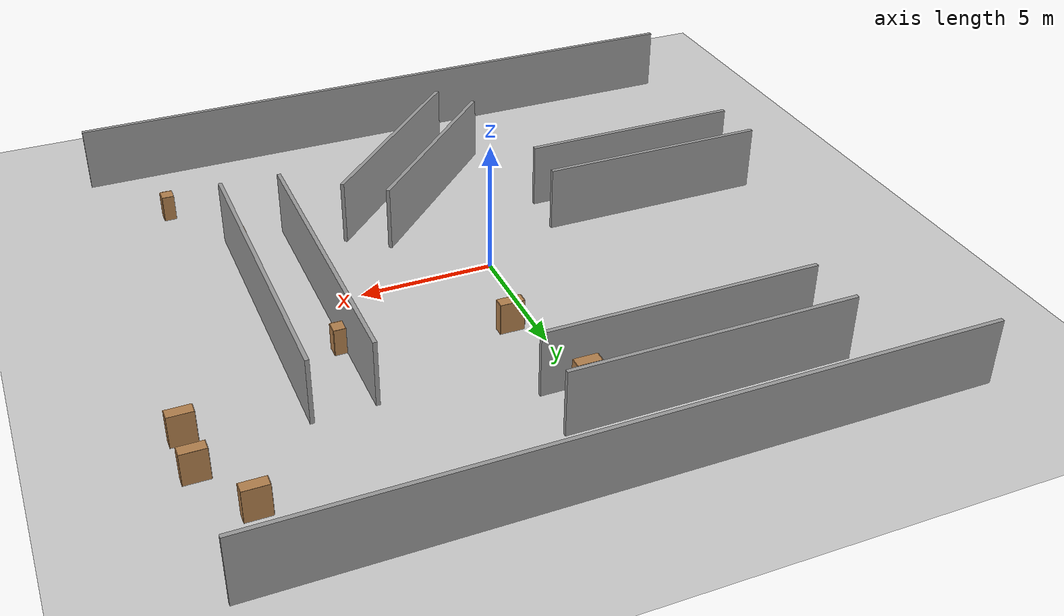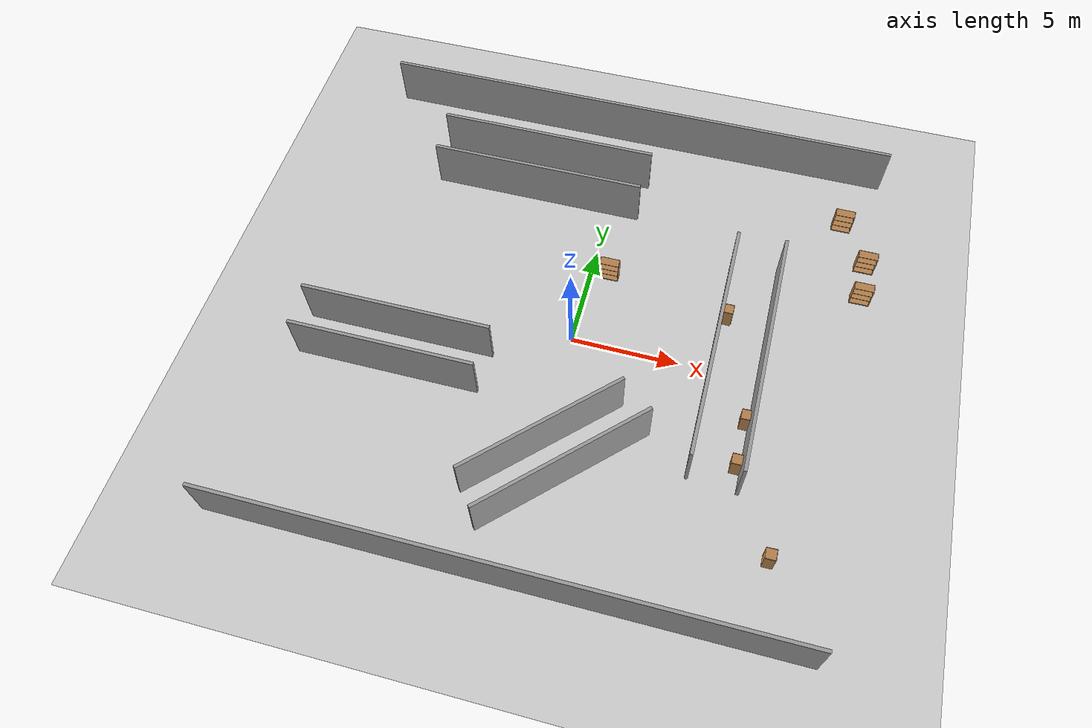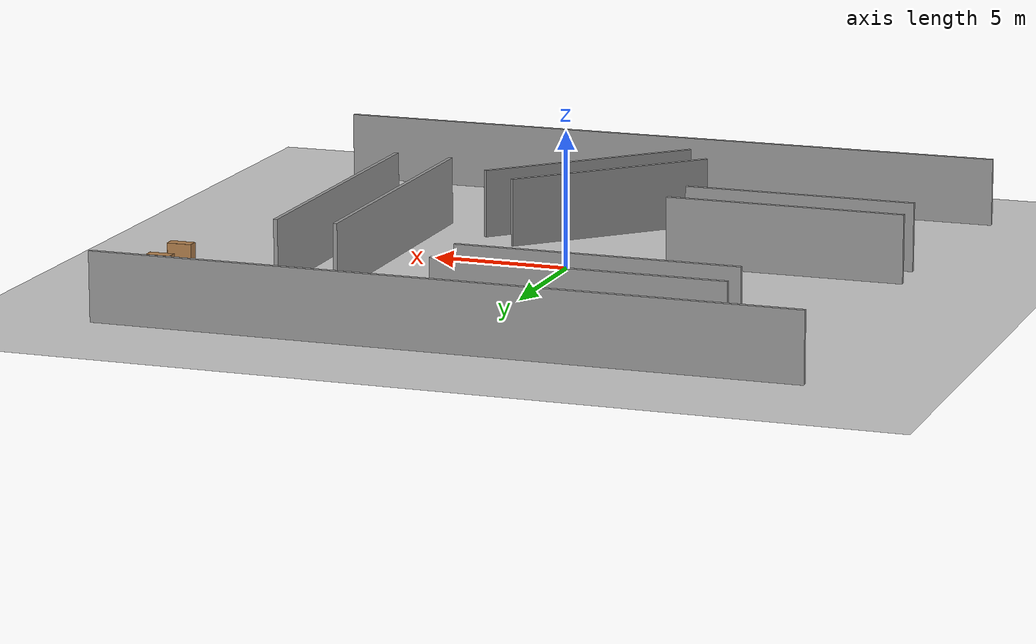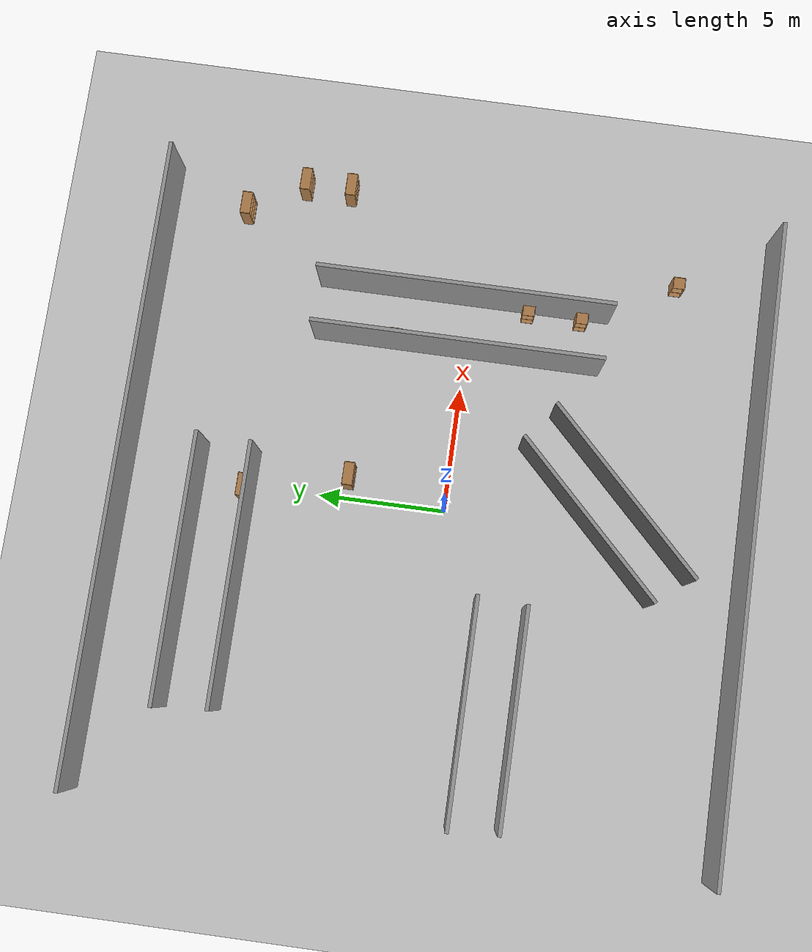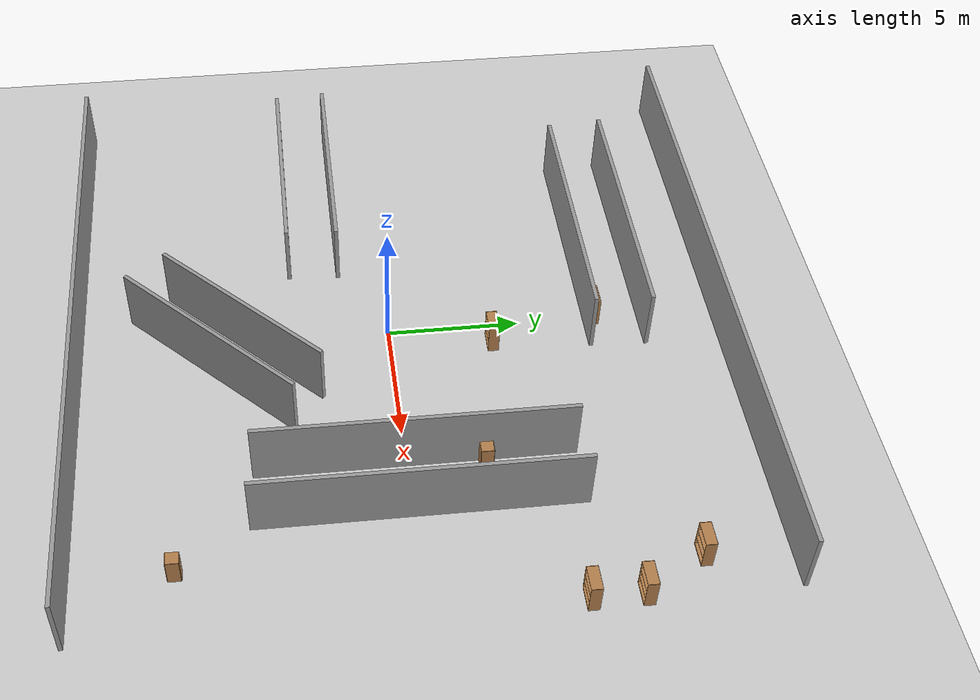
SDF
<sdf version="1.6">
 <world name="default">
  <model name="ground_plane">
   <static>1</static>
   <link name="link">
    <collision name="collision">
     <geometry><plane><normal>0 0 1</normal><size>100 100</size></plane></geometry>
     <surface><friction><ode><mu>100</mu><mu2>50</mu2></ode></friction></surface>
    </collision>
    <visual name="visual">
     <cast_shadows>0</cast_shadows>
     <geometry><plane><normal>0 0 1</normal><size>100 100</size></plane></geometry>
     <material>
      <script><uri>file://media/materials/scripts/gazebo.material</uri><name>Gazebo/Grey</name></script>
     </material>
    </visual>
   </link>
  </model>
  <model name="room12">
   <pose>0.021369 0.452466 0 0 -0 0</pose>
   <link name="Wall_0">
    <collision name="Wall_0_Collision">
     <geometry><box><size>25.25 0.15 2.5</size></box></geometry>
     <pose>0 0 1.25 0 -0 0</pose>
    </collision>
    <visual name="Wall_0_Visual">
     <pose>0 0 1.25 0 -0 0</pose>
     <geometry><box><size>25.25 0.15 2.5</size></box></geometry>
     <material>
      <script><uri>file://media/materials/scripts/gazebo.material</uri><name>Gazebo/Grey</name></script>
      <ambient>1 1 1 1</ambient>
     </material>
     <meta><layer>0</layer></meta>
    </visual>
    <pose>0.133001 12.1297 0 0 -0 0</pose>
   </link>
   <link name="Wall_10">
    <collision name="Wall_10_Collision">
     <geometry><box><size>11.5 0.15 2.5</size></box></geometry>
     <pose>0 0 1.25 0 -0 0</pose>
    </collision>
    <visual name="Wall_10_Visual">
     <pose>0 0 1.25 0 -0 0</pose>
     <geometry><box><size>11.5 0.15 2.5</size></box></geometry>
     <material>
      <script><uri>file://media/materials/scripts/gazebo.material</uri><name>Gazebo/Grey</name></script>
      <ambient>1 1 1 1</ambient>
     </material>
     <meta><layer>0</layer></meta>
    </visual>
    <pose>6.38934 -0.088959 0 0 -0 -1.5708</pose>
   </link>
   <link name="Wall_12">
    <collision name="Wall_12_Collision">
     <geometry><box><size>10.25 0.15 2.5</size></box></geometry>
     <pose>0 0 1.25 0 -0 0</pose>
    </collision>
    <visual name="Wall_12_Visual">
     <pose>0 0 1.25 0 -0 0</pose>
     <geometry><box><size>10.25 0.15 2.5</size></box></geometry>
     <material>
      <script><uri>file://media/materials/scripts/gazebo.material</uri><name>Gazebo/Grey</name></script>
      <ambient>1 1 1 1</ambient>
     </material>
     <meta><layer>0</layer></meta>
    </visual>
    <pose>-3.72277 7.15545 0 0 -0 0</pose>
   </link>
   <link name="Wall_14">
    <collision name="Wall_14_Collision">
     <geometry><box><size>8.5 0.15 2.5</size></box></geometry>
     <pose>0 0 1.25 0 -0 0</pose>
    </collision>
    <visual name="Wall_14_Visual">
     <pose>0 0 1.25 0 -0 0</pose>
     <geometry><box><size>8.5 0.15 2.5</size></box></geometry>
     <material>
      <script><uri>file://media/materials/scripts/gazebo.material</uri><name>Gazebo/Grey</name></script>
      <ambient>1 1 1 1</ambient>
     </material>
     <meta><layer>0</layer></meta>
    </visual>
    <pose>-7.60359 -4.06983 0 0 -0 0</pose>
   </link>
   <link name="Wall_16">
    <collision name="Wall_16_Collision">
     <geometry><box><size>8.5 0.15 2.5</size></box></geometry>
     <pose>0 0 1.25 0 -0 0</pose>
    </collision>
    <visual name="Wall_16_Visual">
     <pose>0 0 1.25 0 -0 0</pose>
     <geometry><box><size>8.5 0.15 2.5</size></box></geometry>
     <material>
      <script><uri>file://media/materials/scripts/gazebo.material</uri><name>Gazebo/Grey</name></script>
      <ambient>1 1 1 1</ambient>
     </material>
     <meta><layer>0</layer></meta>
    </visual>
    <pose>1.40858 -7.18858 0 0 -0 0.785398</pose>
   </link>
   <link name="Wall_18">
    <collision name="Wall_18_Collision">
     <geometry><box><size>8 0.15 2.5</size></box></geometry>
     <pose>0 0 1.25 0 -0 0</pose>
    </collision>
    <visual name="Wall_18_Visual">
     <pose>0 0 1.25 0 -0 0</pose>
     <geometry><box><size>8 0.15 2.5</size></box></geometry>
     <material>
      <script><uri>file://media/materials/scripts/gazebo.material</uri><name>Gazebo/Grey</name></script>
      <ambient>1 1 1 1</ambient>
     </material>
     <meta><layer>0</layer></meta>
    </visual>
    <pose>0.158367 -5.93837 0 0 -0 0.785398</pose>
   </link>
   <link name="Wall_2">
    <collision name="Wall_2_Collision">
     <geometry><box><size>10.5 0.15 2.5</size></box></geometry>
     <pose>0 0 1.25 0 -0 0</pose>
    </collision>
    <visual name="Wall_2_Visual">
     <pose>0 0 1.25 0 -0 0</pose>
     <geometry><box><size>10.5 0.15 2.5</size></box></geometry>
     <material>
      <script><uri>file://media/materials/scripts/gazebo.material</uri><name>Gazebo/Grey</name></script>
      <ambient>1 1 1 1</ambient>
     </material>
     <meta><layer>0</layer></meta>
    </visual>
    <pose>-3.75737 9.25687 0 0 -0 0</pose>
   </link>
   <link name="Wall_4">
    <collision name="Wall_4_Collision">
     <geometry><box><size>8.75 0.15 2.5</size></box></geometry>
     <pose>0 0 1.25 0 -0 0</pose>
    </collision>
    <visual name="Wall_4_Visual">
     <pose>0 0 1.25 0 -0 0</pose>
     <geometry><box><size>8.75 0.15 2.5</size></box></geometry>
     <material>
      <script><uri>file://media/materials/scripts/gazebo.material</uri><name>Gazebo/Grey</name></script>
      <ambient>1 1 1 1</ambient>
     </material>
     <meta><layer>0</layer></meta>
    </visual>
    <pose>-7.6116 -2.15462 0 0 -0 0</pose>
   </link>
   <link name="Wall_6">
    <collision name="Wall_6_Collision">
     <geometry><box><size>25.5 0.15 2.5</size></box></geometry>
     <pose>0 0 1.25 0 -0 0</pose>
    </collision>
    <visual name="Wall_6_Visual">
     <pose>0 0 1.25 0 -0 0</pose>
     <geometry><box><size>25.5 0.15 2.5</size></box></geometry>
     <material>
      <script><uri>file://media/materials/scripts/gazebo.material</uri><name>Gazebo/Grey</name></script>
      <ambient>1 1 1 1</ambient>
     </material>
     <meta><layer>0</layer></meta>
    </visual>
    <pose>-0.008001 -12.1297 0 0 -0 0</pose>
   </link>
   <link name="Wall_8">
    <collision name="Wall_8_Collision">
     <geometry><box><size>11.75 0.15 2.5</size></box></geometry>
     <pose>0 0 1.25 0 -0 0</pose>
    </collision>
    <visual name="Wall_8_Visual">
     <pose>0 0 1.25 0 -0 0</pose>
     <geometry><box><size>11.75 0.15 2.5</size></box></geometry>
     <material>
      <script><uri>file://media/materials/scripts/gazebo.material</uri><name>Gazebo/Grey</name></script>
      <ambient>1 1 1 1</ambient>
     </material>
     <meta><layer>0</layer></meta>
    </visual>
    <pose>8.59716 -0.134158 0 0 -0 -1.5708</pose>
   </link>
   <static>1</static>
  </model>
  <model name="bookshelf">
   <static>1</static>
   <link name="link">
    <inertial><mass>1</mass></inertial>
    <collision name="back">
     <pose>0 0.005 0.6 0 -0 0</pose>
     <geometry><box><size>0.9 0.01 1.2</size></box></geometry>
    </collision>
    <visual name="visual1">
     <pose>0 0.005 0.6 0 -0 0</pose>
     <geometry><box><size>0.9 0.01 1.2</size></box></geometry>
     <material>
      <script><uri>file://media/materials/scripts/gazebo.material</uri><name>Gazebo/Wood</name></script>
     </material>
    </visual>
    <collision name="left_side">
     <pose>0.45 -0.195 0.6 0 -0 0</pose>
     <geometry><box><size>0.02 0.4 1.2</size></box></geometry>
    </collision>
    <visual name="visual2">
     <pose>0.45 -0.195 0.6 0 -0 0</pose>
     <geometry><box><size>0.02 0.4 1.2</size></box></geometry>
     <material>
      <script><uri>file://media/materials/scripts/gazebo.material</uri><name>Gazebo/Wood</name></script>
     </material>
    </visual>
    <collision name="right_side">
     <pose>-0.45 -0.195 0.6 0 -0 0</pose>
     <geometry><box><size>0.02 0.4 1.2</size></box></geometry>
    </collision>
    <visual name="visual3">
     <pose>-0.45 -0.195 0.6 0 -0 0</pose>
     <geometry><box><size>0.02 0.4 1.2</size></box></geometry>
     <material>
      <script><uri>file://media/materials/scripts/gazebo.material</uri><name>Gazebo/Wood</name></script>
     </material>
    </visual>
    <collision name="bottom">
     <pose>0 -0.195 0.03 0 -0 0</pose>
     <geometry><box><size>0.88 0.4 0.06</size></box></geometry>
    </collision>
    <visual name="visual4">
     <pose>0 -0.195 0.03 0 -0 0</pose>
     <geometry><box><size>0.88 0.4 0.06</size></box></geometry>
     <material>
      <script><uri>file://media/materials/scripts/gazebo.material</uri><name>Gazebo/Wood</name></script>
     </material>
    </visual>
    <collision name="top">
     <pose>0 -0.195 1.19 0 -0 0</pose>
     <geometry><box><size>0.88 0.4 0.02</size></box></geometry>
    </collision>
    <visual name="visual5">
     <pose>0 -0.195 1.19 0 -0 0</pose>
     <geometry><box><size>0.88 0.4 0.02</size></box></geometry>
     <material>
      <script><uri>file://media/materials/scripts/gazebo.material</uri><name>Gazebo/Wood</name></script>
     </material>
    </visual>
    <collision name="low_shelf">
     <pose>0 -0.195 0.43 0 -0 0</pose>
     <geometry><box><size>0.88 0.4 0.02</size></box></geometry>
    </collision>
    <visual name="visual6">
     <pose>0 -0.195 0.43 0 -0 0</pose>
     <geometry><box><size>0.88 0.4 0.02</size></box></geometry>
     <material>
      <script><uri>file://media/materials/scripts/gazebo.material</uri><name>Gazebo/Wood</name></script>
     </material>
    </visual>
    <collision name="high_shelf">
     <pose>0 -0.195 0.8 0 -0 0</pose>
     <geometry><box><size>0.88 0.4 0.02</size></box></geometry>
    </collision>
    <visual name="visual7">
     <pose>0 -0.195 0.8 0 -0 0</pose>
     <geometry><box><size>0.88 0.4 0.02</size></box></geometry>
     <material>
      <script><uri>file://media/materials/scripts/gazebo.material</uri><name>Gazebo/Wood</name></script>
     </material>
    </visual>
   </link>
   <pose>11.2227 9.72643 0 0 -0 0</pose>
  </model>
  <model name="bookshelf_0">
   <static>1</static>
   <link name="link">
    <inertial><mass>1</mass></inertial>
    <collision name="back">
     <pose>0 0.005 0.6 0 -0 0</pose>
     <geometry><box><size>0.9 0.01 1.2</size></box></geometry>
    </collision>
    <visual name="visual1">
     <pose>0 0.005 0.6 0 -0 0</pose>
     <geometry><box><size>0.9 0.01 1.2</size></box></geometry>
     <material>
      <script><uri>file://media/materials/scripts/gazebo.material</uri><name>Gazebo/Wood</name></script>
     </material>
    </visual>
    <collision name="left_side">
     <pose>0.45 -0.195 0.6 0 -0 0</pose>
     <geometry><box><size>0.02 0.4 1.2</size></box></geometry>
    </collision>
    <visual name="visual2">
     <pose>0.45 -0.195 0.6 0 -0 0</pose>
     <geometry><box><size>0.02 0.4 1.2</size></box></geometry>
     <material>
      <script><uri>file://media/materials/scripts/gazebo.material</uri><name>Gazebo/Wood</name></script>
     </material>
    </visual>
    <collision name="right_side">
     <pose>-0.45 -0.195 0.6 0 -0 0</pose>
     <geometry><box><size>0.02 0.4 1.2</size></box></geometry>
    </collision>
    <visual name="visual3">
     <pose>-0.45 -0.195 0.6 0 -0 0</pose>
     <geometry><box><size>0.02 0.4 1.2</size></box></geometry>
     <material>
      <script><uri>file://media/materials/scripts/gazebo.material</uri><name>Gazebo/Wood</name></script>
     </material>
    </visual>
    <collision name="bottom">
     <pose>0 -0.195 0.03 0 -0 0</pose>
     <geometry><box><size>0.88 0.4 0.06</size></box></geometry>
    </collision>
    <visual name="visual4">
     <pose>0 -0.195 0.03 0 -0 0</pose>
     <geometry><box><size>0.88 0.4 0.06</size></box></geometry>
     <material>
      <script><uri>file://media/materials/scripts/gazebo.material</uri><name>Gazebo/Wood</name></script>
     </material>
    </visual>
    <collision name="top">
     <pose>0 -0.195 1.19 0 -0 0</pose>
     <geometry><box><size>0.88 0.4 0.02</size></box></geometry>
    </collision>
    <visual name="visual5">
     <pose>0 -0.195 1.19 0 -0 0</pose>
     <geometry><box><size>0.88 0.4 0.02</size></box></geometry>
     <material>
      <script><uri>file://media/materials/scripts/gazebo.material</uri><name>Gazebo/Wood</name></script>
     </material>
    </visual>
    <collision name="low_shelf">
     <pose>0 -0.195 0.43 0 -0 0</pose>
     <geometry><box><size>0.88 0.4 0.02</size></box></geometry>
    </collision>
    <visual name="visual6">
     <pose>0 -0.195 0.43 0 -0 0</pose>
     <geometry><box><size>0.88 0.4 0.02</size></box></geometry>
     <material>
      <script><uri>file://media/materials/scripts/gazebo.material</uri><name>Gazebo/Wood</name></script>
     </material>
    </visual>
    <collision name="high_shelf">
     <pose>0 -0.195 0.8 0 -0 0</pose>
     <geometry><box><size>0.88 0.4 0.02</size></box></geometry>
    </collision>
    <visual name="visual7">
     <pose>0 -0.195 0.8 0 -0 0</pose>
     <geometry><box><size>0.88 0.4 0.02</size></box></geometry>
     <material>
      <script><uri>file://media/materials/scripts/gazebo.material</uri><name>Gazebo/Wood</name></script>
     </material>
    </visual>
   </link>
   <pose>12.5461 7.50087 0 0 -0 0</pose>
  </model>
  <model name="bookshelf_1">
   <static>1</static>
   <link name="link">
    <inertial><mass>1</mass></inertial>
    <collision name="back">
     <pose>0 0.005 0.6 0 -0 0</pose>
     <geometry><box><size>0.9 0.01 1.2</size></box></geometry>
    </collision>
    <visual name="visual1">
     <pose>0 0.005 0.6 0 -0 0</pose>
     <geometry><box><size>0.9 0.01 1.2</size></box></geometry>
     <material>
      <script><uri>file://media/materials/scripts/gazebo.material</uri><name>Gazebo/Wood</name></script>
     </material>
    </visual>
    <collision name="left_side">
     <pose>0.45 -0.195 0.6 0 -0 0</pose>
     <geometry><box><size>0.02 0.4 1.2</size></box></geometry>
    </collision>
    <visual name="visual2">
     <pose>0.45 -0.195 0.6 0 -0 0</pose>
     <geometry><box><size>0.02 0.4 1.2</size></box></geometry>
     <material>
      <script><uri>file://media/materials/scripts/gazebo.material</uri><name>Gazebo/Wood</name></script>
     </material>
    </visual>
    <collision name="right_side">
     <pose>-0.45 -0.195 0.6 0 -0 0</pose>
     <geometry><box><size>0.02 0.4 1.2</size></box></geometry>
    </collision>
    <visual name="visual3">
     <pose>-0.45 -0.195 0.6 0 -0 0</pose>
     <geometry><box><size>0.02 0.4 1.2</size></box></geometry>
     <material>
      <script><uri>file://media/materials/scripts/gazebo.material</uri><name>Gazebo/Wood</name></script>
     </material>
    </visual>
    <collision name="bottom">
     <pose>0 -0.195 0.03 0 -0 0</pose>
     <geometry><box><size>0.88 0.4 0.06</size></box></geometry>
    </collision>
    <visual name="visual4">
     <pose>0 -0.195 0.03 0 -0 0</pose>
     <geometry><box><size>0.88 0.4 0.06</size></box></geometry>
     <material>
      <script><uri>file://media/materials/scripts/gazebo.material</uri><name>Gazebo/Wood</name></script>
     </material>
    </visual>
    <collision name="top">
     <pose>0 -0.195 1.19 0 -0 0</pose>
     <geometry><box><size>0.88 0.4 0.02</size></box></geometry>
    </collision>
    <visual name="visual5">
     <pose>0 -0.195 1.19 0 -0 0</pose>
     <geometry><box><size>0.88 0.4 0.02</size></box></geometry>
     <material>
      <script><uri>file://media/materials/scripts/gazebo.material</uri><name>Gazebo/Wood</name></script>
     </material>
    </visual>
    <collision name="low_shelf">
     <pose>0 -0.195 0.43 0 -0 0</pose>
     <geometry><box><size>0.88 0.4 0.02</size></box></geometry>
    </collision>
    <visual name="visual6">
     <pose>0 -0.195 0.43 0 -0 0</pose>
     <geometry><box><size>0.88 0.4 0.02</size></box></geometry>
     <material>
      <script><uri>file://media/materials/scripts/gazebo.material</uri><name>Gazebo/Wood</name></script>
     </material>
    </visual>
    <collision name="high_shelf">
     <pose>0 -0.195 0.8 0 -0 0</pose>
     <geometry><box><size>0.88 0.4 0.02</size></box></geometry>
    </collision>
    <visual name="visual7">
     <pose>0 -0.195 0.8 0 -0 0</pose>
     <geometry><box><size>0.88 0.4 0.02</size></box></geometry>
     <material>
      <script><uri>file://media/materials/scripts/gazebo.material</uri><name>Gazebo/Wood</name></script>
     </material>
    </visual>
   </link>
   <pose>12.5496 5.66017 0 0 -0 0</pose>
  </model>
  <model name="bookshelf_4">
   <static>1</static>
   <link name="link">
    <inertial><mass>1</mass></inertial>
    <collision name="back">
     <pose>0 0.005 0.6 0 -0 0</pose>
     <geometry><box><size>0.9 0.01 1.2</size></box></geometry>
    </collision>
    <visual name="visual1">
     <pose>0 0.005 0.6 0 -0 0</pose>
     <geometry><box><size>0.9 0.01 1.2</size></box></geometry>
     <material>
      <script><uri>file://media/materials/scripts/gazebo.material</uri><name>Gazebo/Wood</name></script>
     </material>
    </visual>
    <collision name="left_side">
     <pose>0.45 -0.195 0.6 0 -0 0</pose>
     <geometry><box><size>0.02 0.4 1.2</size></box></geometry>
    </collision>
    <visual name="visual2">
     <pose>0.45 -0.195 0.6 0 -0 0</pose>
     <geometry><box><size>0.02 0.4 1.2</size></box></geometry>
     <material>
      <script><uri>file://media/materials/scripts/gazebo.material</uri><name>Gazebo/Wood</name></script>
     </material>
    </visual>
    <collision name="right_side">
     <pose>-0.45 -0.195 0.6 0 -0 0</pose>
     <geometry><box><size>0.02 0.4 1.2</size></box></geometry>
    </collision>
    <visual name="visual3">
     <pose>-0.45 -0.195 0.6 0 -0 0</pose>
     <geometry><box><size>0.02 0.4 1.2</size></box></geometry>
     <material>
      <script><uri>file://media/materials/scripts/gazebo.material</uri><name>Gazebo/Wood</name></script>
     </material>
    </visual>
    <collision name="bottom">
     <pose>0 -0.195 0.03 0 -0 0</pose>
     <geometry><box><size>0.88 0.4 0.06</size></box></geometry>
    </collision>
    <visual name="visual4">
     <pose>0 -0.195 0.03 0 -0 0</pose>
     <geometry><box><size>0.88 0.4 0.06</size></box></geometry>
     <material>
      <script><uri>file://media/materials/scripts/gazebo.material</uri><name>Gazebo/Wood</name></script>
     </material>
    </visual>
    <collision name="top">
     <pose>0 -0.195 1.19 0 -0 0</pose>
     <geometry><box><size>0.88 0.4 0.02</size></box></geometry>
    </collision>
    <visual name="visual5">
     <pose>0 -0.195 1.19 0 -0 0</pose>
     <geometry><box><size>0.88 0.4 0.02</size></box></geometry>
     <material>
      <script><uri>file://media/materials/scripts/gazebo.material</uri><name>Gazebo/Wood</name></script>
     </material>
    </visual>
    <collision name="low_shelf">
     <pose>0 -0.195 0.43 0 -0 0</pose>
     <geometry><box><size>0.88 0.4 0.02</size></box></geometry>
    </collision>
    <visual name="visual6">
     <pose>0 -0.195 0.43 0 -0 0</pose>
     <geometry><box><size>0.88 0.4 0.02</size></box></geometry>
     <material>
      <script><uri>file://media/materials/scripts/gazebo.material</uri><name>Gazebo/Wood</name></script>
     </material>
    </visual>
    <collision name="high_shelf">
     <pose>0 -0.195 0.8 0 -0 0</pose>
     <geometry><box><size>0.88 0.4 0.02</size></box></geometry>
    </collision>
    <visual name="visual7">
     <pose>0 -0.195 0.8 0 -0 0</pose>
     <geometry><box><size>0.88 0.4 0.02</size></box></geometry>
     <material>
      <script><uri>file://media/materials/scripts/gazebo.material</uri><name>Gazebo/Wood</name></script>
     </material>
    </visual>
   </link>
   <pose>0.857474 4.07096 0 0 -0 0</pose>
  </model>
  <model name="bookshelf_7">
   <static>1</static>
   <link name="link">
    <inertial><mass>1</mass></inertial>
    <collision name="back">
     <pose>0 0.005 0.6 0 -0 0</pose>
     <geometry><box><size>0.9 0.01 1.2</size></box></geometry>
    </collision>
    <visual name="visual1">
     <pose>0 0.005 0.6 0 -0 0</pose>
     <geometry><box><size>0.9 0.01 1.2</size></box></geometry>
     <material>
      <script><uri>file://media/materials/scripts/gazebo.material</uri><name>Gazebo/Wood</name></script>
     </material>
    </visual>
    <collision name="left_side">
     <pose>0.45 -0.195 0.6 0 -0 0</pose>
     <geometry><box><size>0.02 0.4 1.2</size></box></geometry>
    </collision>
    <visual name="visual2">
     <pose>0.45 -0.195 0.6 0 -0 0</pose>
     <geometry><box><size>0.02 0.4 1.2</size></box></geometry>
     <material>
      <script><uri>file://media/materials/scripts/gazebo.material</uri><name>Gazebo/Wood</name></script>
     </material>
    </visual>
    <collision name="right_side">
     <pose>-0.45 -0.195 0.6 0 -0 0</pose>
     <geometry><box><size>0.02 0.4 1.2</size></box></geometry>
    </collision>
    <visual name="visual3">
     <pose>-0.45 -0.195 0.6 0 -0 0</pose>
     <geometry><box><size>0.02 0.4 1.2</size></box></geometry>
     <material>
      <script><uri>file://media/materials/scripts/gazebo.material</uri><name>Gazebo/Wood</name></script>
     </material>
    </visual>
    <collision name="bottom">
     <pose>0 -0.195 0.03 0 -0 0</pose>
     <geometry><box><size>0.88 0.4 0.06</size></box></geometry>
    </collision>
    <visual name="visual4">
     <pose>0 -0.195 0.03 0 -0 0</pose>
     <geometry><box><size>0.88 0.4 0.06</size></box></geometry>
     <material>
      <script><uri>file://media/materials/scripts/gazebo.material</uri><name>Gazebo/Wood</name></script>
     </material>
    </visual>
    <collision name="top">
     <pose>0 -0.195 1.19 0 -0 0</pose>
     <geometry><box><size>0.88 0.4 0.02</size></box></geometry>
    </collision>
    <visual name="visual5">
     <pose>0 -0.195 1.19 0 -0 0</pose>
     <geometry><box><size>0.88 0.4 0.02</size></box></geometry>
     <material>
      <script><uri>file://media/materials/scripts/gazebo.material</uri><name>Gazebo/Wood</name></script>
     </material>
    </visual>
    <collision name="low_shelf">
     <pose>0 -0.195 0.43 0 -0 0</pose>
     <geometry><box><size>0.88 0.4 0.02</size></box></geometry>
    </collision>
    <visual name="visual6">
     <pose>0 -0.195 0.43 0 -0 0</pose>
     <geometry><box><size>0.88 0.4 0.02</size></box></geometry>
     <material>
      <script><uri>file://media/materials/scripts/gazebo.material</uri><name>Gazebo/Wood</name></script>
     </material>
    </visual>
    <collision name="high_shelf">
     <pose>0 -0.195 0.8 0 -0 0</pose>
     <geometry><box><size>0.88 0.4 0.02</size></box></geometry>
    </collision>
    <visual name="visual7">
     <pose>0 -0.195 0.8 0 -0 0</pose>
     <geometry><box><size>0.88 0.4 0.02</size></box></geometry>
     <material>
      <script><uri>file://media/materials/scripts/gazebo.material</uri><name>Gazebo/Wood</name></script>
     </material>
    </visual>
   </link>
   <pose>-0.123708 8.10105 0 0 -0 0</pose>
  </model>
  <model name="cabinet_0">
   <static>1</static>
   <link name="cabinet_bottom_plate">
    <inertial>
     <pose>0 0 -1 0 -0 0</pose>
     <inertia><ixx>2.05</ixx><ixy>0</ixy><ixz>0</ixz><iyy>2.05</iyy><iyz>0</iyz><izz>2.05</izz></inertia>
     <mass>25</mass>
    </inertial>
    <collision name="cabinet_bottom_plate_geom">
     <pose>0 0 0.01 0 -0 0</pose>
     <geometry><box><size>0.45 0.45 0.02</size></box></geometry>
    </collision>
    <visual name="cabinet_bottom_plate_geom_visual">
     <pose>0 0 0.01 0 -0 0</pose>
     <geometry><box><size>0.45 0.45 0.02</size></box></geometry>
     <material>
      <script><uri>file://media/materials/scripts/gazebo.material</uri><name>Gazebo/Wood</name></script>
     </material>
    </visual>
    <collision name="cabinet_bottom_plate_geom_cabinet_back_plate">
     <pose>0.235 0 0.51 0 -0 0</pose>
     <geometry><box><size>0.02 0.45 1.02</size></box></geometry>
    </collision>
    <visual name="cabinet_bottom_plate_geom_cabinet_back_plate_visual">
     <pose>0.235 0 0.51 0 -0 0</pose>
     <geometry><box><size>0.02 0.45 1.02</size></box></geometry>
     <material>
      <script><uri>file://media/materials/scripts/gazebo.material</uri><name>Gazebo/Wood</name></script>
     </material>
    </visual>
    <collision name="cabinet_bottom_plate_geom_cabinet_left_plate">
     <pose>0 0.235 0.51 0 -0 0</pose>
     <geometry><box><size>0.45 0.02 1.02</size></box></geometry>
    </collision>
    <visual name="cabinet_bottom_plate_geom_cabinet_left_plate_visual">
     <pose>0 0.235 0.51 0 -0 0</pose>
     <geometry><box><size>0.45 0.02 1.02</size></box></geometry>
     <material>
      <script><uri>file://media/materials/scripts/gazebo.material</uri><name>Gazebo/Wood</name></script>
     </material>
    </visual>
    <collision name="cabinet_bottom_plate_geom_cabinet_middle_plate">
     <pose>0 0 0.51 0 -0 0</pose>
     <geometry><box><size>0.45 0.45 0.02</size></box></geometry>
    </collision>
    <visual name="cabinet_bottom_plate_geom_cabinet_middle_plate_visual">
     <pose>0 0 0.51 0 -0 0</pose>
     <geometry><box><size>0.45 0.45 0.02</size></box></geometry>
     <material>
      <script><uri>file://media/materials/scripts/gazebo.material</uri><name>Gazebo/Wood</name></script>
     </material>
    </visual>
    <collision name="cabinet_bottom_plate_geom_cabinet_right_plate">
     <pose>0 -0.235 0.51 0 -0 0</pose>
     <geometry><box><size>0.45 0.02 1.02</size></box></geometry>
    </collision>
    <visual name="cabinet_bottom_plate_geom_cabinet_right_plate_visual">
     <pose>0 -0.235 0.51 0 -0 0</pose>
     <geometry><box><size>0.45 0.02 1.02</size></box></geometry>
     <material>
      <script><uri>file://media/materials/scripts/gazebo.material</uri><name>Gazebo/Wood</name></script>
     </material>
    </visual>
    <collision name="cabinet_bottom_plate_geom_cabinet_top_plate">
     <pose>0 0 1.01 0 -0 0</pose>
     <geometry><box><size>0.45 0.45 0.02</size></box></geometry>
    </collision>
    <visual name="cabinet_bottom_plate_geom_cabinet_top_plate_visual">
     <pose>0 0 1.01 0 -0 0</pose>
     <geometry><box><size>0.45 0.45 0.02</size></box></geometry>
     <material>
      <script><uri>file://media/materials/scripts/gazebo.material</uri><name>Gazebo/Wood</name></script>
     </material>
    </visual>
   </link>
   <pose>8.32137 -4.4179 0 0 -0 0</pose>
  </model>
  <model name="cabinet_1">
   <static>1</static>
   <link name="cabinet_bottom_plate">
    <inertial>
     <pose>0 0 -1 0 -0 0</pose>
     <inertia><ixx>2.05</ixx><ixy>0</ixy><ixz>0</ixz><iyy>2.05</iyy><iyz>0</iyz><izz>2.05</izz></inertia>
     <mass>25</mass>
    </inertial>
    <collision name="cabinet_bottom_plate_geom">
     <pose>0 0 0.01 0 -0 0</pose>
     <geometry><box><size>0.45 0.45 0.02</size></box></geometry>
    </collision>
    <visual name="cabinet_bottom_plate_geom_visual">
     <pose>0 0 0.01 0 -0 0</pose>
     <geometry><box><size>0.45 0.45 0.02</size></box></geometry>
     <material>
      <script><uri>file://media/materials/scripts/gazebo.material</uri><name>Gazebo/Wood</name></script>
     </material>
    </visual>
    <collision name="cabinet_bottom_plate_geom_cabinet_back_plate">
     <pose>0.235 0 0.51 0 -0 0</pose>
     <geometry><box><size>0.02 0.45 1.02</size></box></geometry>
    </collision>
    <visual name="cabinet_bottom_plate_geom_cabinet_back_plate_visual">
     <pose>0.235 0 0.51 0 -0 0</pose>
     <geometry><box><size>0.02 0.45 1.02</size></box></geometry>
     <material>
      <script><uri>file://media/materials/scripts/gazebo.material</uri><name>Gazebo/Wood</name></script>
     </material>
    </visual>
    <collision name="cabinet_bottom_plate_geom_cabinet_left_plate">
     <pose>0 0.235 0.51 0 -0 0</pose>
     <geometry><box><size>0.45 0.02 1.02</size></box></geometry>
    </collision>
    <visual name="cabinet_bottom_plate_geom_cabinet_left_plate_visual">
     <pose>0 0.235 0.51 0 -0 0</pose>
     <geometry><box><size>0.45 0.02 1.02</size></box></geometry>
     <material>
      <script><uri>file://media/materials/scripts/gazebo.material</uri><name>Gazebo/Wood</name></script>
     </material>
    </visual>
    <collision name="cabinet_bottom_plate_geom_cabinet_middle_plate">
     <pose>0 0 0.51 0 -0 0</pose>
     <geometry><box><size>0.45 0.45 0.02</size></box></geometry>
    </collision>
    <visual name="cabinet_bottom_plate_geom_cabinet_middle_plate_visual">
     <pose>0 0 0.51 0 -0 0</pose>
     <geometry><box><size>0.45 0.45 0.02</size></box></geometry>
     <material>
      <script><uri>file://media/materials/scripts/gazebo.material</uri><name>Gazebo/Wood</name></script>
     </material>
    </visual>
    <collision name="cabinet_bottom_plate_geom_cabinet_right_plate">
     <pose>0 -0.235 0.51 0 -0 0</pose>
     <geometry><box><size>0.45 0.02 1.02</size></box></geometry>
    </collision>
    <visual name="cabinet_bottom_plate_geom_cabinet_right_plate_visual">
     <pose>0 -0.235 0.51 0 -0 0</pose>
     <geometry><box><size>0.45 0.02 1.02</size></box></geometry>
     <material>
      <script><uri>file://media/materials/scripts/gazebo.material</uri><name>Gazebo/Wood</name></script>
     </material>
    </visual>
    <collision name="cabinet_bottom_plate_geom_cabinet_top_plate">
     <pose>0 0 1.01 0 -0 0</pose>
     <geometry><box><size>0.45 0.45 0.02</size></box></geometry>
    </collision>
    <visual name="cabinet_bottom_plate_geom_cabinet_top_plate_visual">
     <pose>0 0 1.01 0 -0 0</pose>
     <geometry><box><size>0.45 0.45 0.02</size></box></geometry>
     <material>
      <script><uri>file://media/materials/scripts/gazebo.material</uri><name>Gazebo/Wood</name></script>
     </material>
    </visual>
   </link>
   <pose>8.36439 -2.28014 0 0 -0 0</pose>
  </model>
  <model name="cabinet_2">
   <static>1</static>
   <link name="cabinet_bottom_plate">
    <inertial>
     <pose>0 0 -1 0 -0 0</pose>
     <inertia><ixx>2.05</ixx><ixy>0</ixy><ixz>0</ixz><iyy>2.05</iyy><iyz>0</iyz><izz>2.05</izz></inertia>
     <mass>25</mass>
    </inertial>
    <collision name="cabinet_bottom_plate_geom">
     <pose>0 0 0.01 0 -0 0</pose>
     <geometry><box><size>0.45 0.45 0.02</size></box></geometry>
    </collision>
    <visual name="cabinet_bottom_plate_geom_visual">
     <pose>0 0 0.01 0 -0 0</pose>
     <geometry><box><size>0.45 0.45 0.02</size></box></geometry>
     <material>
      <script><uri>file://media/materials/scripts/gazebo.material</uri><name>Gazebo/Wood</name></script>
     </material>
    </visual>
    <collision name="cabinet_bottom_plate_geom_cabinet_back_plate">
     <pose>0.235 0 0.51 0 -0 0</pose>
     <geometry><box><size>0.02 0.45 1.02</size></box></geometry>
    </collision>
    <visual name="cabinet_bottom_plate_geom_cabinet_back_plate_visual">
     <pose>0.235 0 0.51 0 -0 0</pose>
     <geometry><box><size>0.02 0.45 1.02</size></box></geometry>
     <material>
      <script><uri>file://media/materials/scripts/gazebo.material</uri><name>Gazebo/Wood</name></script>
     </material>
    </visual>
    <collision name="cabinet_bottom_plate_geom_cabinet_left_plate">
     <pose>0 0.235 0.51 0 -0 0</pose>
     <geometry><box><size>0.45 0.02 1.02</size></box></geometry>
    </collision>
    <visual name="cabinet_bottom_plate_geom_cabinet_left_plate_visual">
     <pose>0 0.235 0.51 0 -0 0</pose>
     <geometry><box><size>0.45 0.02 1.02</size></box></geometry>
     <material>
      <script><uri>file://media/materials/scripts/gazebo.material</uri><name>Gazebo/Wood</name></script>
     </material>
    </visual>
    <collision name="cabinet_bottom_plate_geom_cabinet_middle_plate">
     <pose>0 0 0.51 0 -0 0</pose>
     <geometry><box><size>0.45 0.45 0.02</size></box></geometry>
    </collision>
    <visual name="cabinet_bottom_plate_geom_cabinet_middle_plate_visual">
     <pose>0 0 0.51 0 -0 0</pose>
     <geometry><box><size>0.45 0.45 0.02</size></box></geometry>
     <material>
      <script><uri>file://media/materials/scripts/gazebo.material</uri><name>Gazebo/Wood</name></script>
     </material>
    </visual>
    <collision name="cabinet_bottom_plate_geom_cabinet_right_plate">
     <pose>0 -0.235 0.51 0 -0 0</pose>
     <geometry><box><size>0.45 0.02 1.02</size></box></geometry>
    </collision>
    <visual name="cabinet_bottom_plate_geom_cabinet_right_plate_visual">
     <pose>0 -0.235 0.51 0 -0 0</pose>
     <geometry><box><size>0.45 0.02 1.02</size></box></geometry>
     <material>
      <script><uri>file://media/materials/scripts/gazebo.material</uri><name>Gazebo/Wood</name></script>
     </material>
    </visual>
    <collision name="cabinet_bottom_plate_geom_cabinet_top_plate">
     <pose>0 0 1.01 0 -0 0</pose>
     <geometry><box><size>0.45 0.45 0.02</size></box></geometry>
    </collision>
    <visual name="cabinet_bottom_plate_geom_cabinet_top_plate_visual">
     <pose>0 0 1.01 0 -0 0</pose>
     <geometry><box><size>0.45 0.45 0.02</size></box></geometry>
     <material>
      <script><uri>file://media/materials/scripts/gazebo.material</uri><name>Gazebo/Wood</name></script>
     </material>
    </visual>
   </link>
   <pose>6.69073 2.82855 0 0 -0 0</pose>
  </model>
  <model name="cabinet_5">
   <static>1</static>
   <link name="cabinet_bottom_plate">
    <inertial>
     <pose>0 0 -1 0 -0 0</pose>
     <inertia><ixx>2.05</ixx><ixy>0</ixy><ixz>0</ixz><iyy>2.05</iyy><iyz>0</iyz><izz>2.05</izz></inertia>
     <mass>25</mass>
    </inertial>
    <collision name="cabinet_bottom_plate_geom">
     <pose>0 0 0.01 0 -0 0</pose>
     <geometry><box><size>0.45 0.45 0.02</size></box></geometry>
    </collision>
    <visual name="cabinet_bottom_plate_geom_visual">
     <pose>0 0 0.01 0 -0 0</pose>
     <geometry><box><size>0.45 0.45 0.02</size></box></geometry>
     <material>
      <script><uri>file://media/materials/scripts/gazebo.material</uri><name>Gazebo/Wood</name></script>
     </material>
    </visual>
    <collision name="cabinet_bottom_plate_geom_cabinet_back_plate">
     <pose>0.235 0 0.51 0 -0 0</pose>
     <geometry><box><size>0.02 0.45 1.02</size></box></geometry>
    </collision>
    <visual name="cabinet_bottom_plate_geom_cabinet_back_plate_visual">
     <pose>0.235 0 0.51 0 -0 0</pose>
     <geometry><box><size>0.02 0.45 1.02</size></box></geometry>
     <material>
      <script><uri>file://media/materials/scripts/gazebo.material</uri><name>Gazebo/Wood</name></script>
     </material>
    </visual>
    <collision name="cabinet_bottom_plate_geom_cabinet_left_plate">
     <pose>0 0.235 0.51 0 -0 0</pose>
     <geometry><box><size>0.45 0.02 1.02</size></box></geometry>
    </collision>
    <visual name="cabinet_bottom_plate_geom_cabinet_left_plate_visual">
     <pose>0 0.235 0.51 0 -0 0</pose>
     <geometry><box><size>0.45 0.02 1.02</size></box></geometry>
     <material>
      <script><uri>file://media/materials/scripts/gazebo.material</uri><name>Gazebo/Wood</name></script>
     </material>
    </visual>
    <collision name="cabinet_bottom_plate_geom_cabinet_middle_plate">
     <pose>0 0 0.51 0 -0 0</pose>
     <geometry><box><size>0.45 0.45 0.02</size></box></geometry>
    </collision>
    <visual name="cabinet_bottom_plate_geom_cabinet_middle_plate_visual">
     <pose>0 0 0.51 0 -0 0</pose>
     <geometry><box><size>0.45 0.45 0.02</size></box></geometry>
     <material>
      <script><uri>file://media/materials/scripts/gazebo.material</uri><name>Gazebo/Wood</name></script>
     </material>
    </visual>
    <collision name="cabinet_bottom_plate_geom_cabinet_right_plate">
     <pose>0 -0.235 0.51 0 -0 0</pose>
     <geometry><box><size>0.45 0.02 1.02</size></box></geometry>
    </collision>
    <visual name="cabinet_bottom_plate_geom_cabinet_right_plate_visual">
     <pose>0 -0.235 0.51 0 -0 0</pose>
     <geometry><box><size>0.45 0.02 1.02</size></box></geometry>
     <material>
      <script><uri>file://media/materials/scripts/gazebo.material</uri><name>Gazebo/Wood</name></script>
     </material>
    </visual>
    <collision name="cabinet_bottom_plate_geom_cabinet_top_plate">
     <pose>0 0 1.01 0 -0 0</pose>
     <geometry><box><size>0.45 0.45 0.02</size></box></geometry>
    </collision>
    <visual name="cabinet_bottom_plate_geom_cabinet_top_plate_visual">
     <pose>0 0 1.01 0 -0 0</pose>
     <geometry><box><size>0.45 0.45 0.02</size></box></geometry>
     <material>
      <script><uri>file://media/materials/scripts/gazebo.material</uri><name>Gazebo/Wood</name></script>
     </material>
    </visual>
   </link>
   <pose>10.284 -8.08662 0 0 -0 0</pose>
  </model>
 </world>
</sdf>
